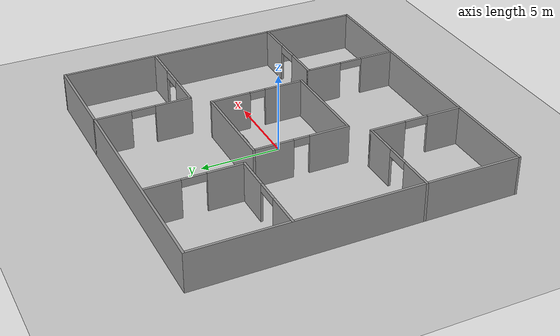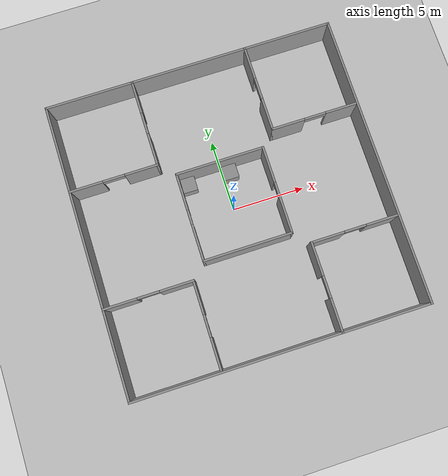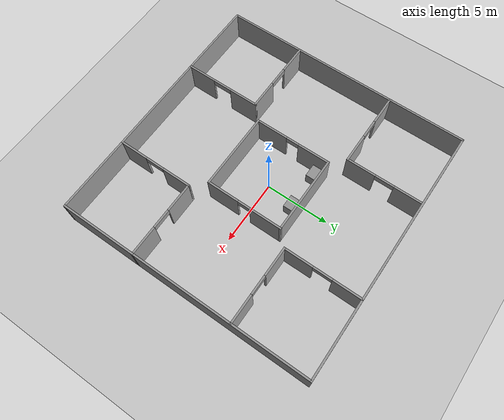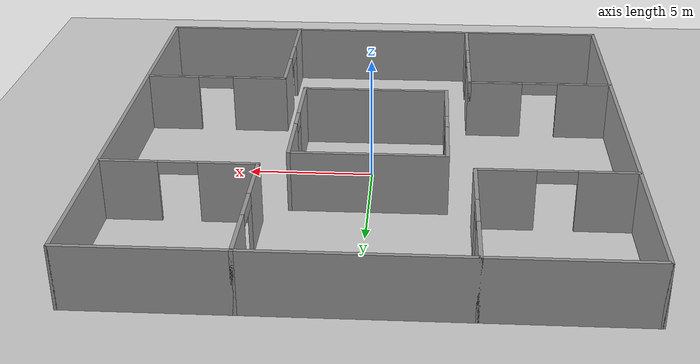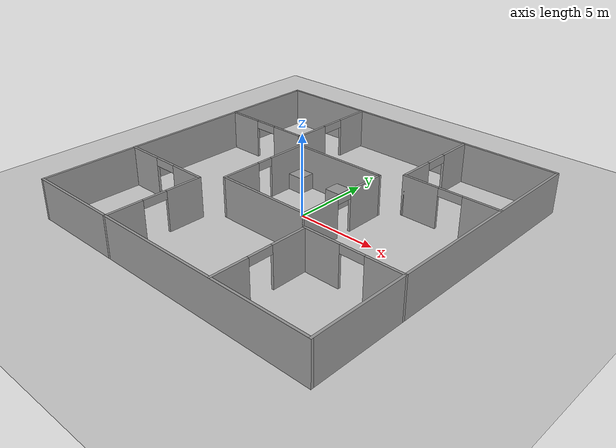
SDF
<sdf version="1.6">
 <world name="default">
  <light name="sun" type="directional">
   <pose>0 0 10 0 -0 0</pose>
   <diffuse>0.8 0.8 0.8 1</diffuse>
   <specular>0.2 0.2 0.2 1</specular>
   <attenuation>
    <range>1000</range>
    <constant>0.9</constant>
    <linear>0.01</linear>
    <quadratic>0.001</quadratic>
   </attenuation>
   <direction>-0.5 0.1 -0.9</direction>
  </light>
  <model name="ground_plane">
   <static>1</static>
   <link name="link">
    <collision name="collision">
     <geometry><plane><normal>0 0 1</normal><size>100 100</size></plane></geometry>
     <surface>
      <contact><collide_bitmask>65535</collide_bitmask></contact>
      <friction><ode><mu>100</mu><mu2>50</mu2></ode></friction>
     </surface>
    </collision>
    <visual name="visual">
     <cast_shadows>0</cast_shadows>
     <geometry><plane><normal>0 0 1</normal><size>100 100</size></plane></geometry>
     <material>
      <script><uri>file://media/materials/scripts/gazebo.material</uri><name>Gazebo/Grey</name></script>
     </material>
    </visual>
   </link>
  </model>
  <gravity>0 0 -9.8</gravity>
  <magnetic_field>6e-06 2.3e-05 -4.2e-05</magnetic_field>
  <atmosphere type="adiabatic"/>
  <physics name="default_physics" default="0" type="ode">
   <max_step_size>0.001</max_step_size>
   <real_time_factor>1</real_time_factor>
   <real_time_update_rate>1000</real_time_update_rate>
  </physics>
  <scene><ambient>0.4 0.4 0.4 1</ambient><background>0.7 0.7 0.7 1</background><shadows>1</shadows></scene>
  <audio><device>default</device></audio>
  <spherical_coordinates>
   <surface_model>EARTH_WGS84</surface_model>
   <latitude_deg>0</latitude_deg>
   <longitude_deg>0</longitude_deg>
   <elevation>0</elevation>
   <heading_deg>0</heading_deg>
  </spherical_coordinates>
  <model name="room_1">
   <link name="Wall_0">
    <collision name="Wall_0_Collision">
     <geometry><box><size>20.15 0.15 2.5</size></box></geometry>
     <pose>0 0 1.25 0 -0 0</pose>
    </collision>
    <visual name="Wall_0_Visual">
     <pose>0 0 1.25 0 -0 0</pose>
     <geometry><box><size>20.15 0.15 2.5</size></box></geometry>
     <material>
      <script><uri>file://media/materials/scripts/gazebo.material</uri><name>Gazebo/Grey</name></script>
      <ambient>1 1 1 1</ambient>
     </material>
     <meta><layer>0</layer></meta>
    </visual>
    <pose>0 10 0 0 -0 0</pose>
   </link>
   <link name="Wall_1">
    <collision name="Wall_1_Collision">
     <geometry><box><size>20.15 0.15 2.5</size></box></geometry>
     <pose>0 0 1.25 0 -0 0</pose>
    </collision>
    <visual name="Wall_1_Visual">
     <pose>0 0 1.25 0 -0 0</pose>
     <geometry><box><size>20.15 0.15 2.5</size></box></geometry>
     <material>
      <script><uri>file://media/materials/scripts/gazebo.material</uri><name>Gazebo/Grey</name></script>
      <ambient>1 1 1 1</ambient>
     </material>
     <meta><layer>0</layer></meta>
    </visual>
    <pose>10 0 0 0 -0 -1.5708</pose>
   </link>
   <link name="Wall_11">
    <pose>4 7 0 0 -0 -1.5708</pose>
    <visual name="Wall_11_Visual_0">
     <pose>-1.9125 0 1.25 0 -0 0</pose>
     <geometry><box><size>2.325 0.15 2.5</size></box></geometry>
     <material>
      <script><uri>file://media/materials/scripts/gazebo.material</uri><name>Gazebo/Grey</name></script>
      <ambient>1 1 1 1</ambient>
     </material>
     <meta><layer>0</layer></meta>
    </visual>
    <collision name="Wall_11_Collision_0">
     <geometry><box><size>2.325 0.15 2.5</size></box></geometry>
     <pose>-1.9125 0 1.25 0 -0 0</pose>
    </collision>
    <visual name="Wall_11_Visual_1">
     <pose>1.9125 0 1.25 0 -0 0</pose>
     <geometry><box><size>2.325 0.15 2.5</size></box></geometry>
     <material>
      <script><uri>file://media/materials/scripts/gazebo.material</uri><name>Gazebo/Grey</name></script>
      <ambient>1 1 1 1</ambient>
     </material>
     <meta><layer>0</layer></meta>
    </visual>
    <collision name="Wall_11_Collision_1">
     <geometry><box><size>2.325 0.15 2.5</size></box></geometry>
     <pose>1.9125 0 1.25 0 -0 0</pose>
    </collision>
    <visual name="Wall_11_Visual_2">
     <pose>0 0 2.25 0 -0 0</pose>
     <geometry><box><size>1.5 0.15 0.5</size></box></geometry>
     <material>
      <script><uri>file://media/materials/scripts/gazebo.material</uri><name>Gazebo/Grey</name></script>
      <ambient>1 1 1 1</ambient>
     </material>
     <meta><layer>0</layer></meta>
    </visual>
    <collision name="Wall_11_Collision_2">
     <geometry><box><size>1.5 0.15 0.5</size></box></geometry>
     <pose>0 0 2.25 0 -0 0</pose>
    </collision>
   </link>
   <link name="Wall_12">
    <pose>7 4 0 0 -0 0</pose>
    <visual name="Wall_12_Visual_0">
     <pose>-1.9125 0 1.25 0 -0 0</pose>
     <geometry><box><size>2.325 0.15 2.5</size></box></geometry>
     <material>
      <script><uri>file://media/materials/scripts/gazebo.material</uri><name>Gazebo/Grey</name></script>
      <ambient>1 1 1 1</ambient>
     </material>
     <meta><layer>0</layer></meta>
    </visual>
    <collision name="Wall_12_Collision_0">
     <geometry><box><size>2.325 0.15 2.5</size></box></geometry>
     <pose>-1.9125 0 1.25 0 -0 0</pose>
    </collision>
    <visual name="Wall_12_Visual_1">
     <pose>1.9125 0 1.25 0 -0 0</pose>
     <geometry><box><size>2.325 0.15 2.5</size></box></geometry>
     <material>
      <script><uri>file://media/materials/scripts/gazebo.material</uri><name>Gazebo/Grey</name></script>
      <ambient>1 1 1 1</ambient>
     </material>
     <meta><layer>0</layer></meta>
    </visual>
    <collision name="Wall_12_Collision_1">
     <geometry><box><size>2.325 0.15 2.5</size></box></geometry>
     <pose>1.9125 0 1.25 0 -0 0</pose>
    </collision>
    <visual name="Wall_12_Visual_2">
     <pose>0 0 2.25 0 -0 0</pose>
     <geometry><box><size>1.5 0.15 0.5</size></box></geometry>
     <material>
      <script><uri>file://media/materials/scripts/gazebo.material</uri><name>Gazebo/Grey</name></script>
      <ambient>1 1 1 1</ambient>
     </material>
     <meta><layer>0</layer></meta>
    </visual>
    <collision name="Wall_12_Collision_2">
     <geometry><box><size>1.5 0.15 0.5</size></box></geometry>
     <pose>0 0 2.25 0 -0 0</pose>
    </collision>
   </link>
   <link name="Wall_14">
    <pose>4 -7 0 0 -0 1.5708</pose>
    <visual name="Wall_14_Visual_0">
     <pose>-1.9125 0 1.25 0 -0 0</pose>
     <geometry><box><size>2.325 0.15 2.5</size></box></geometry>
     <material>
      <script><uri>file://media/materials/scripts/gazebo.material</uri><name>Gazebo/Grey</name></script>
      <ambient>1 1 1 1</ambient>
     </material>
     <meta><layer>0</layer></meta>
    </visual>
    <collision name="Wall_14_Collision_0">
     <geometry><box><size>2.325 0.15 2.5</size></box></geometry>
     <pose>-1.9125 0 1.25 0 -0 0</pose>
    </collision>
    <visual name="Wall_14_Visual_1">
     <pose>1.9125 0 1.25 0 -0 0</pose>
     <geometry><box><size>2.325 0.15 2.5</size></box></geometry>
     <material>
      <script><uri>file://media/materials/scripts/gazebo.material</uri><name>Gazebo/Grey</name></script>
      <ambient>1 1 1 1</ambient>
     </material>
     <meta><layer>0</layer></meta>
    </visual>
    <collision name="Wall_14_Collision_1">
     <geometry><box><size>2.325 0.15 2.5</size></box></geometry>
     <pose>1.9125 0 1.25 0 -0 0</pose>
    </collision>
    <visual name="Wall_14_Visual_2">
     <pose>0 0 2.25 0 -0 0</pose>
     <geometry><box><size>1.5 0.15 0.5</size></box></geometry>
     <material>
      <script><uri>file://media/materials/scripts/gazebo.material</uri><name>Gazebo/Grey</name></script>
      <ambient>1 1 1 1</ambient>
     </material>
     <meta><layer>0</layer></meta>
    </visual>
    <collision name="Wall_14_Collision_2">
     <geometry><box><size>1.5 0.15 0.5</size></box></geometry>
     <pose>0 0 2.25 0 -0 0</pose>
    </collision>
   </link>
   <link name="Wall_15">
    <pose>7 -4 0 0 -0 0</pose>
    <visual name="Wall_15_Visual_0">
     <pose>-1.9125 0 1.25 0 -0 0</pose>
     <geometry><box><size>2.325 0.15 2.5</size></box></geometry>
     <material>
      <script><uri>file://media/materials/scripts/gazebo.material</uri><name>Gazebo/Grey</name></script>
      <ambient>1 1 1 1</ambient>
     </material>
     <meta><layer>0</layer></meta>
    </visual>
    <collision name="Wall_15_Collision_0">
     <geometry><box><size>2.325 0.15 2.5</size></box></geometry>
     <pose>-1.9125 0 1.25 0 -0 0</pose>
    </collision>
    <visual name="Wall_15_Visual_1">
     <pose>1.9125 0 1.25 0 -0 0</pose>
     <geometry><box><size>2.325 0.15 2.5</size></box></geometry>
     <material>
      <script><uri>file://media/materials/scripts/gazebo.material</uri><name>Gazebo/Grey</name></script>
      <ambient>1 1 1 1</ambient>
     </material>
     <meta><layer>0</layer></meta>
    </visual>
    <collision name="Wall_15_Collision_1">
     <geometry><box><size>2.325 0.15 2.5</size></box></geometry>
     <pose>1.9125 0 1.25 0 -0 0</pose>
    </collision>
    <visual name="Wall_15_Visual_2">
     <pose>0 0 2.25 0 -0 0</pose>
     <geometry><box><size>1.5 0.15 0.5</size></box></geometry>
     <material>
      <script><uri>file://media/materials/scripts/gazebo.material</uri><name>Gazebo/Grey</name></script>
      <ambient>1 1 1 1</ambient>
     </material>
     <meta><layer>0</layer></meta>
    </visual>
    <collision name="Wall_15_Collision_2">
     <geometry><box><size>1.5 0.15 0.5</size></box></geometry>
     <pose>0 0 2.25 0 -0 0</pose>
    </collision>
   </link>
   <link name="Wall_17">
    <pose>-3 0 0 0 -0 -1.5708</pose>
    <visual name="Wall_17_Visual_0">
     <pose>-1.7875 0 1.25 0 -0 0</pose>
     <geometry><box><size>2.575 0.15 2.5</size></box></geometry>
     <material>
      <script><uri>file://media/materials/scripts/gazebo.material</uri><name>Gazebo/Grey</name></script>
      <ambient>1 1 1 1</ambient>
     </material>
     <meta><layer>0</layer></meta>
    </visual>
    <collision name="Wall_17_Collision_0">
     <geometry><box><size>2.575 0.15 2.5</size></box></geometry>
     <pose>-1.7875 0 1.25 0 -0 0</pose>
    </collision>
    <visual name="Wall_17_Visual_1">
     <pose>1.7875 0 1.25 0 -0 0</pose>
     <geometry><box><size>2.575 0.15 2.5</size></box></geometry>
     <material>
      <script><uri>file://media/materials/scripts/gazebo.material</uri><name>Gazebo/Grey</name></script>
      <ambient>1 1 1 1</ambient>
     </material>
     <meta><layer>0</layer></meta>
    </visual>
    <collision name="Wall_17_Collision_1">
     <geometry><box><size>2.575 0.15 2.5</size></box></geometry>
     <pose>1.7875 0 1.25 0 -0 0</pose>
    </collision>
    <visual name="Wall_17_Visual_2">
     <pose>0 0 2.25 0 -0 0</pose>
     <geometry><box><size>1 0.15 0.5</size></box></geometry>
     <material>
      <script><uri>file://media/materials/scripts/gazebo.material</uri><name>Gazebo/Grey</name></script>
      <ambient>1 1 1 1</ambient>
     </material>
     <meta><layer>0</layer></meta>
    </visual>
    <collision name="Wall_17_Collision_2">
     <geometry><box><size>1 0.15 0.5</size></box></geometry>
     <pose>0 0 2.25 0 -0 0</pose>
    </collision>
   </link>
   <link name="Wall_18">
    <collision name="Wall_18_Collision">
     <geometry><box><size>6.15 0.15 2.5</size></box></geometry>
     <pose>0 0 1.25 0 -0 0</pose>
    </collision>
    <visual name="Wall_18_Visual">
     <pose>0 0 1.25 0 -0 0</pose>
     <geometry><box><size>6.15 0.15 2.5</size></box></geometry>
     <material>
      <script><uri>file://media/materials/scripts/gazebo.material</uri><name>Gazebo/Grey</name></script>
      <ambient>1 1 1 1</ambient>
     </material>
     <meta><layer>0</layer></meta>
    </visual>
    <pose>0 -3 0 0 -0 0</pose>
   </link>
   <link name="Wall_19">
    <pose>3 0 0 0 -0 1.5708</pose>
    <visual name="Wall_19_Visual_0">
     <pose>-1.7875 0 1.25 0 -0 0</pose>
     <geometry><box><size>2.575 0.15 2.5</size></box></geometry>
     <material>
      <script><uri>file://media/materials/scripts/gazebo.material</uri><name>Gazebo/Grey</name></script>
      <ambient>1 1 1 1</ambient>
     </material>
     <meta><layer>0</layer></meta>
    </visual>
    <collision name="Wall_19_Collision_0">
     <geometry><box><size>2.575 0.15 2.5</size></box></geometry>
     <pose>-1.7875 0 1.25 0 -0 0</pose>
    </collision>
    <visual name="Wall_19_Visual_1">
     <pose>1.7875 0 1.25 0 -0 0</pose>
     <geometry><box><size>2.575 0.15 2.5</size></box></geometry>
     <material>
      <script><uri>file://media/materials/scripts/gazebo.material</uri><name>Gazebo/Grey</name></script>
      <ambient>1 1 1 1</ambient>
     </material>
     <meta><layer>0</layer></meta>
    </visual>
    <collision name="Wall_19_Collision_1">
     <geometry><box><size>2.575 0.15 2.5</size></box></geometry>
     <pose>1.7875 0 1.25 0 -0 0</pose>
    </collision>
    <visual name="Wall_19_Visual_2">
     <pose>0 0 2.25 0 -0 0</pose>
     <geometry><box><size>1 0.15 0.5</size></box></geometry>
     <material>
      <script><uri>file://media/materials/scripts/gazebo.material</uri><name>Gazebo/Grey</name></script>
      <ambient>1 1 1 1</ambient>
     </material>
     <meta><layer>0</layer></meta>
    </visual>
    <collision name="Wall_19_Collision_2">
     <geometry><box><size>1 0.15 0.5</size></box></geometry>
     <pose>0 0 2.25 0 -0 0</pose>
    </collision>
   </link>
   <link name="Wall_2">
    <collision name="Wall_2_Collision">
     <geometry><box><size>20.15 0.15 2.5</size></box></geometry>
     <pose>0 0 1.25 0 -0 0</pose>
    </collision>
    <visual name="Wall_2_Visual">
     <pose>0 0 1.25 0 -0 0</pose>
     <geometry><box><size>20.15 0.15 2.5</size></box></geometry>
     <material>
      <script><uri>file://media/materials/scripts/gazebo.material</uri><name>Gazebo/Grey</name></script>
      <ambient>1 1 1 1</ambient>
     </material>
     <meta><layer>0</layer></meta>
    </visual>
    <pose>0 -10 0 0 -0 3.14159</pose>
   </link>
   <link name="Wall_20">
    <collision name="Wall_20_Collision">
     <geometry><box><size>6.15 0.15 2.5</size></box></geometry>
     <pose>0 0 1.25 0 -0 0</pose>
    </collision>
    <visual name="Wall_20_Visual">
     <pose>0 0 1.25 0 -0 0</pose>
     <geometry><box><size>6.15 0.15 2.5</size></box></geometry>
     <material>
      <script><uri>file://media/materials/scripts/gazebo.material</uri><name>Gazebo/Grey</name></script>
      <ambient>1 1 1 1</ambient>
     </material>
     <meta><layer>0</layer></meta>
    </visual>
    <pose>0 3 0 0 -0 3.14159</pose>
   </link>
   <link name="Wall_3">
    <collision name="Wall_3_Collision">
     <geometry><box><size>20.15 0.15 2.5</size></box></geometry>
     <pose>0 0 1.25 0 -0 0</pose>
    </collision>
    <visual name="Wall_3_Visual">
     <pose>0 0 1.25 0 -0 0</pose>
     <geometry><box><size>20.15 0.15 2.5</size></box></geometry>
     <material>
      <script><uri>file://media/materials/scripts/gazebo.material</uri><name>Gazebo/Grey</name></script>
      <ambient>1 1 1 1</ambient>
     </material>
     <meta><layer>0</layer></meta>
    </visual>
    <pose>-10 0 0 0 -0 1.5708</pose>
   </link>
   <link name="Wall_5">
    <pose>-7 -4 0 0 -0 0</pose>
    <visual name="Wall_5_Visual_0">
     <pose>-1.9125 0 1.25 0 -0 0</pose>
     <geometry><box><size>2.325 0.15 2.5</size></box></geometry>
     <material>
      <script><uri>file://media/materials/scripts/gazebo.material</uri><name>Gazebo/Grey</name></script>
      <ambient>1 1 1 1</ambient>
     </material>
     <meta><layer>0</layer></meta>
    </visual>
    <collision name="Wall_5_Collision_0">
     <geometry><box><size>2.325 0.15 2.5</size></box></geometry>
     <pose>-1.9125 0 1.25 0 -0 0</pose>
    </collision>
    <visual name="Wall_5_Visual_1">
     <pose>1.9125 0 1.25 0 -0 0</pose>
     <geometry><box><size>2.325 0.15 2.5</size></box></geometry>
     <material>
      <script><uri>file://media/materials/scripts/gazebo.material</uri><name>Gazebo/Grey</name></script>
      <ambient>1 1 1 1</ambient>
     </material>
     <meta><layer>0</layer></meta>
    </visual>
    <collision name="Wall_5_Collision_1">
     <geometry><box><size>2.325 0.15 2.5</size></box></geometry>
     <pose>1.9125 0 1.25 0 -0 0</pose>
    </collision>
    <visual name="Wall_5_Visual_2">
     <pose>0 0 2.25 0 -0 0</pose>
     <geometry><box><size>1.5 0.15 0.5</size></box></geometry>
     <material>
      <script><uri>file://media/materials/scripts/gazebo.material</uri><name>Gazebo/Grey</name></script>
      <ambient>1 1 1 1</ambient>
     </material>
     <meta><layer>0</layer></meta>
    </visual>
    <collision name="Wall_5_Collision_2">
     <geometry><box><size>1.5 0.15 0.5</size></box></geometry>
     <pose>0 0 2.25 0 -0 0</pose>
    </collision>
   </link>
   <link name="Wall_6">
    <pose>-4 -7 0 0 -0 -1.5708</pose>
    <visual name="Wall_6_Visual_0">
     <pose>-1.9125 0 1.25 0 -0 0</pose>
     <geometry><box><size>2.325 0.15 2.5</size></box></geometry>
     <material>
      <script><uri>file://media/materials/scripts/gazebo.material</uri><name>Gazebo/Grey</name></script>
      <ambient>1 1 1 1</ambient>
     </material>
     <meta><layer>0</layer></meta>
    </visual>
    <collision name="Wall_6_Collision_0">
     <geometry><box><size>2.325 0.15 2.5</size></box></geometry>
     <pose>-1.9125 0 1.25 0 -0 0</pose>
    </collision>
    <visual name="Wall_6_Visual_1">
     <pose>1.9125 0 1.25 0 -0 0</pose>
     <geometry><box><size>2.325 0.15 2.5</size></box></geometry>
     <material>
      <script><uri>file://media/materials/scripts/gazebo.material</uri><name>Gazebo/Grey</name></script>
      <ambient>1 1 1 1</ambient>
     </material>
     <meta><layer>0</layer></meta>
    </visual>
    <collision name="Wall_6_Collision_1">
     <geometry><box><size>2.325 0.15 2.5</size></box></geometry>
     <pose>1.9125 0 1.25 0 -0 0</pose>
    </collision>
    <visual name="Wall_6_Visual_2">
     <pose>0 0 2.25 0 -0 0</pose>
     <geometry><box><size>1.5 0.15 0.5</size></box></geometry>
     <material>
      <script><uri>file://media/materials/scripts/gazebo.material</uri><name>Gazebo/Grey</name></script>
      <ambient>1 1 1 1</ambient>
     </material>
     <meta><layer>0</layer></meta>
    </visual>
    <collision name="Wall_6_Collision_2">
     <geometry><box><size>1.5 0.15 0.5</size></box></geometry>
     <pose>0 0 2.25 0 -0 0</pose>
    </collision>
   </link>
   <link name="Wall_8">
    <pose>-7 4 0 0 -0 0</pose>
    <visual name="Wall_8_Visual_0">
     <pose>-1.9125 0 1.25 0 -0 0</pose>
     <geometry><box><size>2.325 0.15 2.5</size></box></geometry>
     <material>
      <script><uri>file://media/materials/scripts/gazebo.material</uri><name>Gazebo/Grey</name></script>
      <ambient>1 1 1 1</ambient>
     </material>
     <meta><layer>0</layer></meta>
    </visual>
    <collision name="Wall_8_Collision_0">
     <geometry><box><size>2.325 0.15 2.5</size></box></geometry>
     <pose>-1.9125 0 1.25 0 -0 0</pose>
    </collision>
    <visual name="Wall_8_Visual_1">
     <pose>1.9125 0 1.25 0 -0 0</pose>
     <geometry><box><size>2.325 0.15 2.5</size></box></geometry>
     <material>
      <script><uri>file://media/materials/scripts/gazebo.material</uri><name>Gazebo/Grey</name></script>
      <ambient>1 1 1 1</ambient>
     </material>
     <meta><layer>0</layer></meta>
    </visual>
    <collision name="Wall_8_Collision_1">
     <geometry><box><size>2.325 0.15 2.5</size></box></geometry>
     <pose>1.9125 0 1.25 0 -0 0</pose>
    </collision>
    <visual name="Wall_8_Visual_2">
     <pose>0 0 2.25 0 -0 0</pose>
     <geometry><box><size>1.5 0.15 0.5</size></box></geometry>
     <material>
      <script><uri>file://media/materials/scripts/gazebo.material</uri><name>Gazebo/Grey</name></script>
      <ambient>1 1 1 1</ambient>
     </material>
     <meta><layer>0</layer></meta>
    </visual>
    <collision name="Wall_8_Collision_2">
     <geometry><box><size>1.5 0.15 0.5</size></box></geometry>
     <pose>0 0 2.25 0 -0 0</pose>
    </collision>
   </link>
   <link name="Wall_9">
    <pose>-4 7 0 0 -0 1.5708</pose>
    <visual name="Wall_9_Visual_0">
     <pose>-1.9125 0 1.25 0 -0 0</pose>
     <geometry><box><size>2.325 0.15 2.5</size></box></geometry>
     <material>
      <script><uri>file://media/materials/scripts/gazebo.material</uri><name>Gazebo/Grey</name></script>
      <ambient>1 1 1 1</ambient>
     </material>
     <meta><layer>0</layer></meta>
    </visual>
    <collision name="Wall_9_Collision_0">
     <geometry><box><size>2.325 0.15 2.5</size></box></geometry>
     <pose>-1.9125 0 1.25 0 -0 0</pose>
    </collision>
    <visual name="Wall_9_Visual_1">
     <pose>1.9125 0 1.25 0 -0 0</pose>
     <geometry><box><size>2.325 0.15 2.5</size></box></geometry>
     <material>
      <script><uri>file://media/materials/scripts/gazebo.material</uri><name>Gazebo/Grey</name></script>
      <ambient>1 1 1 1</ambient>
     </material>
     <meta><layer>0</layer></meta>
    </visual>
    <collision name="Wall_9_Collision_1">
     <geometry><box><size>2.325 0.15 2.5</size></box></geometry>
     <pose>1.9125 0 1.25 0 -0 0</pose>
    </collision>
    <visual name="Wall_9_Visual_2">
     <pose>0 0 2.25 0 -0 0</pose>
     <geometry><box><size>1.5 0.15 0.5</size></box></geometry>
     <material>
      <script><uri>file://media/materials/scripts/gazebo.material</uri><name>Gazebo/Grey</name></script>
      <ambient>1 1 1 1</ambient>
     </material>
     <meta><layer>0</layer></meta>
    </visual>
    <collision name="Wall_9_Collision_2">
     <geometry><box><size>1.5 0.15 0.5</size></box></geometry>
     <pose>0 0 2.25 0 -0 0</pose>
    </collision>
   </link>
   <static>1</static>
  </model>
  <plugin name="gazebo_occupancy_map" filename="libgazebo_2Dmap_plugin.so">
   <map_resolution>0.1</map_resolution>
   <map_height>0.3</map_height>
   <map_size_x>25</map_size_x>
   <map_size_y>25</map_size_y>
   <init_robot_x>0</init_robot_x>
   <init_robot_y>0</init_robot_y>
  </plugin>
  <model name="unit_box">
   <pose>-2.41827 2.41993 0.499995 -1e-05 -0 -0.009748</pose>
   <link name="link">
    <inertial>
     <mass>1</mass>
     <inertia>
      <ixx>0.166667</ixx>
      <ixy>0</ixy>
      <ixz>0</ixz>
      <iyy>0.166667</iyy>
      <iyz>0</iyz>
      <izz>0.166667</izz>
     </inertia>
    </inertial>
    <collision name="collision"><geometry><box><size>1 1 1</size></box></geometry></collision>
    <visual name="visual">
     <geometry><box><size>1 1 1</size></box></geometry>
     <material>
      <script><name>Gazebo/Grey</name><uri>file://media/materials/scripts/gazebo.material</uri></script>
     </material>
    </visual>
   </link>
  </model>
  <model name="unit_box_0">
   <pose>0.514536 2.425 0.499995 -0 -1e-05 -1e-06</pose>
   <link name="link">
    <inertial>
     <mass>1</mass>
     <inertia>
      <ixx>0.166667</ixx>
      <ixy>0</ixy>
      <ixz>0</ixz>
      <iyy>0.166667</iyy>
      <iyz>0</iyz>
      <izz>0.166667</izz>
     </inertia>
    </inertial>
    <collision name="collision"><geometry><box><size>1 1 1</size></box></geometry></collision>
    <visual name="visual">
     <geometry><box><size>1 1 1</size></box></geometry>
     <material>
      <script><name>Gazebo/Grey</name><uri>file://media/materials/scripts/gazebo.material</uri></script>
     </material>
    </visual>
   </link>
  </model>
 </world>
</sdf>
